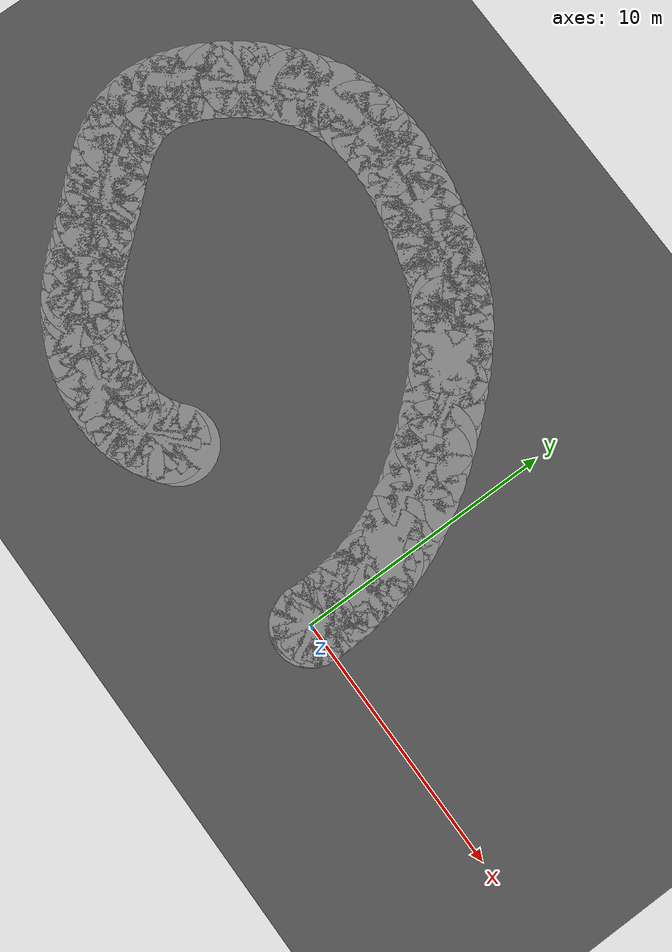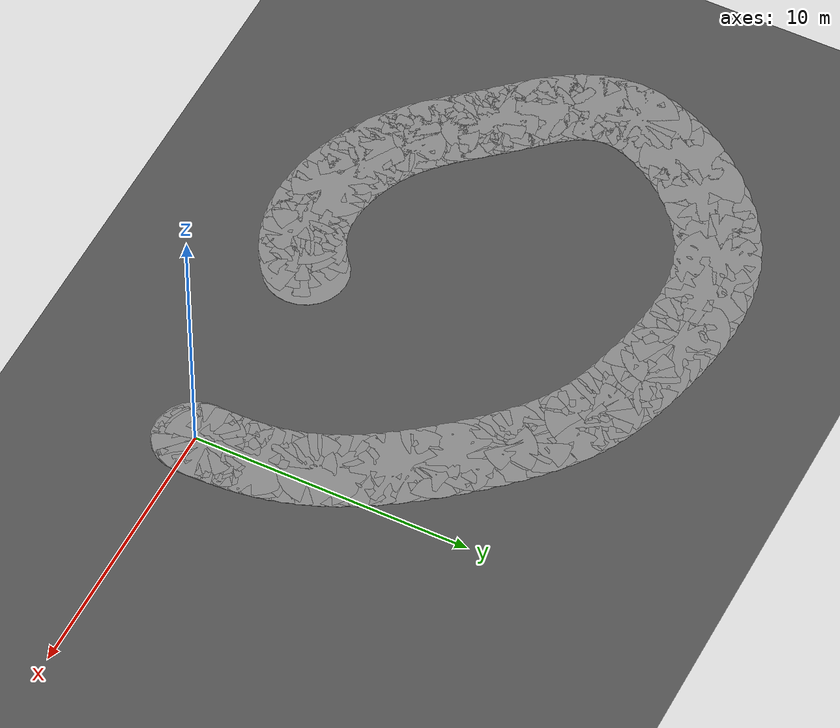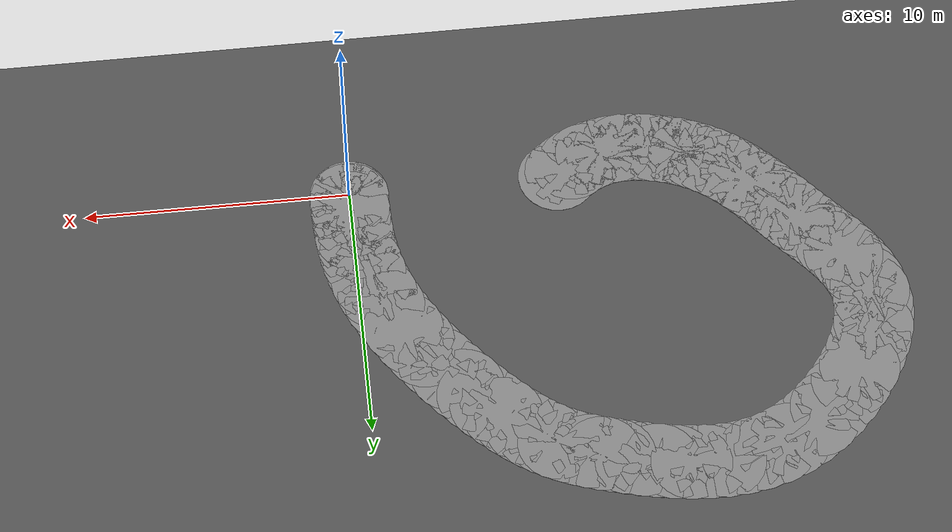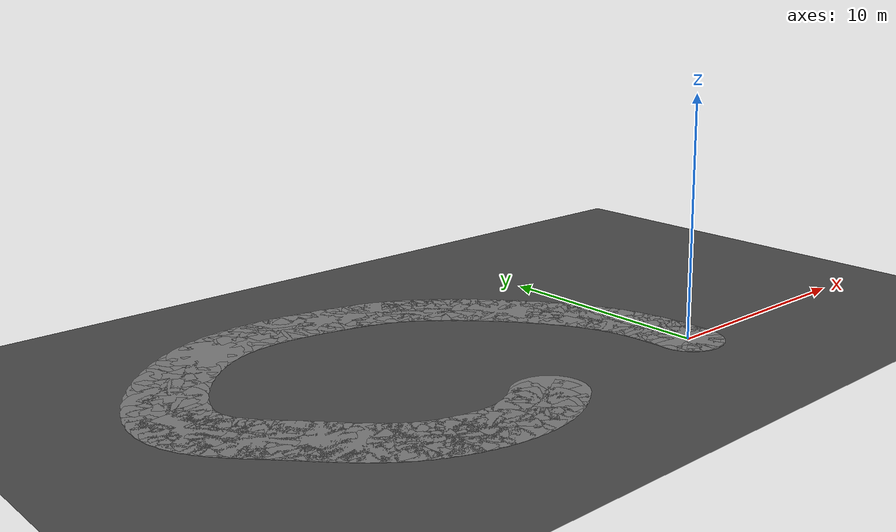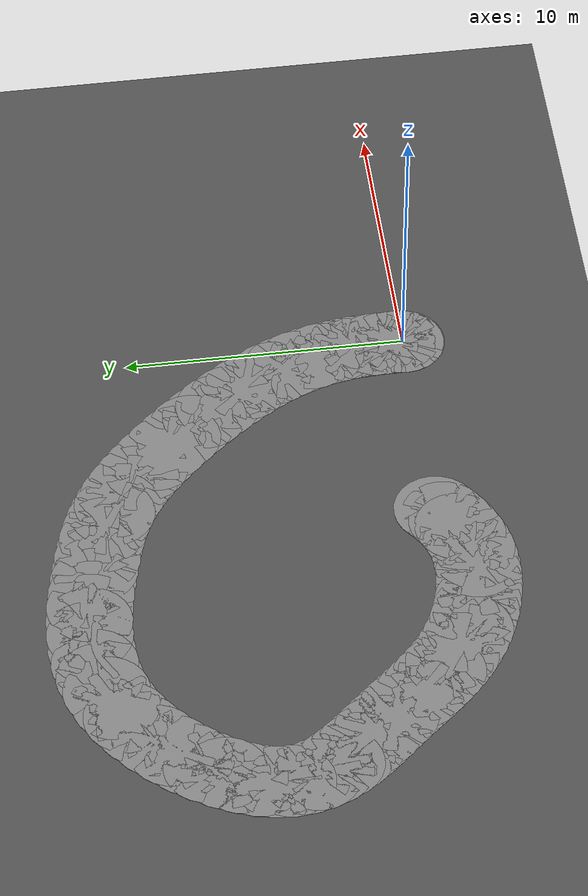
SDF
<sdf version="1.6">
 <world name="mirror_edge_world">
  <model name="ground_plane">
   <static>true</static>
   <link name="link">
    <collision name="collision">
     <geometry><plane><normal>0 0 1</normal><size>100 100</size></plane></geometry>
    </collision>
    <visual name="visual">
     <geometry><plane><normal>0 0 1</normal><size>100 100</size></plane></geometry>
     <material>
      <ambient>0.3 0.3 0.3 1</ambient>
      <diffuse>0.3 0.3 0.3 1</diffuse>
      <specular>0.5 0.5 0.5 1</specular>
      <emissive>0 0 0 1</emissive>
     </material>
    </visual>
   </link>
  </model>
  <model name="corridor_hex_0_0">
   <static>true</static>
   <link name="link">
    <pose>0.0 0.0 0.005 0 0 0</pose>
    <visual name="visual">
     <geometry><cylinder><radius>1.5</radius><length>0.01</length><segments>6</segments></cylinder></geometry>
     <material>
      <ambient>0.5 0.5 0.5 1</ambient>
      <diffuse>0.5 0.5 0.5 1</diffuse>
      <specular>0.3 0.3 0.3 1</specular>
      <emissive>0 0 0 1</emissive>
     </material>
    </visual>
   </link>
  </model>
  <model name="corridor_hex_1_0">
   <static>true</static>
   <link name="link">
    <pose>0.004 0.032 0.005 0 0 0</pose>
    <visual name="visual">
     <geometry><cylinder><radius>1.5</radius><length>0.01</length><segments>6</segments></cylinder></geometry>
     <material>
      <ambient>0.5 0.5 0.5 1</ambient>
      <diffuse>0.5 0.5 0.5 1</diffuse>
      <specular>0.3 0.3 0.3 1</specular>
      <emissive>0 0 0 1</emissive>
     </material>
    </visual>
   </link>
  </model>
  <model name="corridor_hex_2_0">
   <static>true</static>
   <link name="link">
    <pose>0.008 0.069 0.005 0 0 0</pose>
    <visual name="visual">
     <geometry><cylinder><radius>1.5</radius><length>0.01</length><segments>6</segments></cylinder></geometry>
     <material>
      <ambient>0.5 0.5 0.5 1</ambient>
      <diffuse>0.5 0.5 0.5 1</diffuse>
      <specular>0.3 0.3 0.3 1</specular>
      <emissive>0 0 0 1</emissive>
     </material>
    </visual>
   </link>
  </model>
  <model name="corridor_hex_3_0">
   <static>true</static>
   <link name="link">
    <pose>0.011 0.113 0.005 0 0 0</pose>
    <visual name="visual">
     <geometry><cylinder><radius>1.5</radius><length>0.01</length><segments>6</segments></cylinder></geometry>
     <material>
      <ambient>0.5 0.5 0.5 1</ambient>
      <diffuse>0.5 0.5 0.5 1</diffuse>
      <specular>0.3 0.3 0.3 1</specular>
      <emissive>0 0 0 1</emissive>
     </material>
    </visual>
   </link>
  </model>
  <model name="corridor_hex_4_0">
   <static>true</static>
   <link name="link">
    <pose>0.014 0.168 0.005 0 0 0</pose>
    <visual name="visual">
     <geometry><cylinder><radius>1.5</radius><length>0.01</length><segments>6</segments></cylinder></geometry>
     <material>
      <ambient>0.5 0.5 0.5 1</ambient>
      <diffuse>0.5 0.5 0.5 1</diffuse>
      <specular>0.3 0.3 0.3 1</specular>
      <emissive>0 0 0 1</emissive>
     </material>
    </visual>
   </link>
  </model>
  <model name="corridor_hex_5_0">
   <static>true</static>
   <link name="link">
    <pose>0.016 0.239 0.005 0 0 0</pose>
    <visual name="visual">
     <geometry><cylinder><radius>1.5</radius><length>0.01</length><segments>6</segments></cylinder></geometry>
     <material>
      <ambient>0.5 0.5 0.5 1</ambient>
      <diffuse>0.5 0.5 0.5 1</diffuse>
      <specular>0.3 0.3 0.3 1</specular>
      <emissive>0 0 0 1</emissive>
     </material>
    </visual>
   </link>
  </model>
  <model name="corridor_hex_6_0">
   <static>true</static>
   <link name="link">
    <pose>0.016 0.33 0.005 0 0 0</pose>
    <visual name="visual">
     <geometry><cylinder><radius>1.5</radius><length>0.01</length><segments>6</segments></cylinder></geometry>
     <material>
      <ambient>0.5 0.5 0.5 1</ambient>
      <diffuse>0.5 0.5 0.5 1</diffuse>
      <specular>0.3 0.3 0.3 1</specular>
      <emissive>0 0 0 1</emissive>
     </material>
    </visual>
   </link>
  </model>
  <model name="corridor_hex_7_0">
   <static>true</static>
   <link name="link">
    <pose>0.015 0.443 0.005 0 0 0</pose>
    <visual name="visual">
     <geometry><cylinder><radius>1.5</radius><length>0.01</length><segments>6</segments></cylinder></geometry>
     <material>
      <ambient>0.5 0.5 0.5 1</ambient>
      <diffuse>0.5 0.5 0.5 1</diffuse>
      <specular>0.3 0.3 0.3 1</specular>
      <emissive>0 0 0 1</emissive>
     </material>
    </visual>
   </link>
  </model>
  <model name="corridor_hex_8_0">
   <static>true</static>
   <link name="link">
    <pose>0.012 0.584 0.005 0 0 0</pose>
    <visual name="visual">
     <geometry><cylinder><radius>1.5</radius><length>0.01</length><segments>6</segments></cylinder></geometry>
     <material>
      <ambient>0.5 0.5 0.5 1</ambient>
      <diffuse>0.5 0.5 0.5 1</diffuse>
      <specular>0.3 0.3 0.3 1</specular>
      <emissive>0 0 0 1</emissive>
     </material>
    </visual>
   </link>
  </model>
  <model name="corridor_hex_9_0">
   <static>true</static>
   <link name="link">
    <pose>0.008 0.756 0.005 0 0 0</pose>
    <visual name="visual">
     <geometry><cylinder><radius>1.5</radius><length>0.01</length><segments>6</segments></cylinder></geometry>
     <material>
      <ambient>0.5 0.5 0.5 1</ambient>
      <diffuse>0.5 0.5 0.5 1</diffuse>
      <specular>0.3 0.3 0.3 1</specular>
      <emissive>0 0 0 1</emissive>
     </material>
    </visual>
   </link>
  </model>
  <model name="corridor_hex_10_0">
   <static>true</static>
   <link name="link">
    <pose>0.001 0.962 0.005 0 0 0</pose>
    <visual name="visual">
     <geometry><cylinder><radius>1.5</radius><length>0.01</length><segments>6</segments></cylinder></geometry>
     <material>
      <ambient>0.5 0.5 0.5 1</ambient>
      <diffuse>0.5 0.5 0.5 1</diffuse>
      <specular>0.3 0.3 0.3 1</specular>
      <emissive>0 0 0 1</emissive>
     </material>
    </visual>
   </link>
  </model>
  <model name="corridor_hex_11_0">
   <static>true</static>
   <link name="link">
    <pose>-0.008 1.206 0.005 0 0 0</pose>
    <visual name="visual">
     <geometry><cylinder><radius>1.5</radius><length>0.01</length><segments>6</segments></cylinder></geometry>
     <material>
      <ambient>0.5 0.5 0.5 1</ambient>
      <diffuse>0.5 0.5 0.5 1</diffuse>
      <specular>0.3 0.3 0.3 1</specular>
      <emissive>0 0 0 1</emissive>
     </material>
    </visual>
   </link>
  </model>
  <model name="corridor_hex_12_0">
   <static>true</static>
   <link name="link">
    <pose>-0.024 1.488 0.005 0 0 0</pose>
    <visual name="visual">
     <geometry><cylinder><radius>1.5</radius><length>0.01</length><segments>6</segments></cylinder></geometry>
     <material>
      <ambient>0.5 0.5 0.5 1</ambient>
      <diffuse>0.5 0.5 0.5 1</diffuse>
      <specular>0.3 0.3 0.3 1</specular>
      <emissive>0 0 0 1</emissive>
     </material>
    </visual>
   </link>
  </model>
  <model name="corridor_hex_13_0">
   <static>true</static>
   <link name="link">
    <pose>-0.05 1.806 0.005 0 0 0</pose>
    <visual name="visual">
     <geometry><cylinder><radius>1.5</radius><length>0.01</length><segments>6</segments></cylinder></geometry>
     <material>
      <ambient>0.5 0.5 0.5 1</ambient>
      <diffuse>0.5 0.5 0.5 1</diffuse>
      <specular>0.3 0.3 0.3 1</specular>
      <emissive>0 0 0 1</emissive>
     </material>
    </visual>
   </link>
  </model>
  <model name="corridor_hex_14_0">
   <static>true</static>
   <link name="link">
    <pose>-0.092 2.156 0.005 0 0 0</pose>
    <visual name="visual">
     <geometry><cylinder><radius>1.5</radius><length>0.01</length><segments>6</segments></cylinder></geometry>
     <material>
      <ambient>0.5 0.5 0.5 1</ambient>
      <diffuse>0.5 0.5 0.5 1</diffuse>
      <specular>0.3 0.3 0.3 1</specular>
      <emissive>0 0 0 1</emissive>
     </material>
    </visual>
   </link>
  </model>
  <model name="corridor_hex_15_0">
   <static>true</static>
   <link name="link">
    <pose>-0.153 2.537 0.005 0 0 0</pose>
    <visual name="visual">
     <geometry><cylinder><radius>1.5</radius><length>0.01</length><segments>6</segments></cylinder></geometry>
     <material>
      <ambient>0.5 0.5 0.5 1</ambient>
      <diffuse>0.5 0.5 0.5 1</diffuse>
      <specular>0.3 0.3 0.3 1</specular>
      <emissive>0 0 0 1</emissive>
     </material>
    </visual>
   </link>
  </model>
  <model name="corridor_hex_16_0">
   <static>true</static>
   <link name="link">
    <pose>-0.238 2.947 0.005 0 0 0</pose>
    <visual name="visual">
     <geometry><cylinder><radius>1.5</radius><length>0.01</length><segments>6</segments></cylinder></geometry>
     <material>
      <ambient>0.5 0.5 0.5 1</ambient>
      <diffuse>0.5 0.5 0.5 1</diffuse>
      <specular>0.3 0.3 0.3 1</specular>
      <emissive>0 0 0 1</emissive>
     </material>
    </visual>
   </link>
  </model>
  <model name="corridor_hex_17_0">
   <static>true</static>
   <link name="link">
    <pose>-0.353 3.383 0.005 0 0 0</pose>
    <visual name="visual">
     <geometry><cylinder><radius>1.5</radius><length>0.01</length><segments>6</segments></cylinder></geometry>
     <material>
      <ambient>0.5 0.5 0.5 1</ambient>
      <diffuse>0.5 0.5 0.5 1</diffuse>
      <specular>0.3 0.3 0.3 1</specular>
      <emissive>0 0 0 1</emissive>
     </material>
    </visual>
   </link>
  </model>
  <model name="corridor_hex_18_0">
   <static>true</static>
   <link name="link">
    <pose>-0.501 3.844 0.005 0 0 0</pose>
    <visual name="visual">
     <geometry><cylinder><radius>1.5</radius><length>0.01</length><segments>6</segments></cylinder></geometry>
     <material>
      <ambient>0.5 0.5 0.5 1</ambient>
      <diffuse>0.5 0.5 0.5 1</diffuse>
      <specular>0.3 0.3 0.3 1</specular>
      <emissive>0 0 0 1</emissive>
     </material>
    </visual>
   </link>
  </model>
  <model name="corridor_hex_19_0">
   <static>true</static>
   <link name="link">
    <pose>-0.686 4.326 0.005 0 0 0</pose>
    <visual name="visual">
     <geometry><cylinder><radius>1.5</radius><length>0.01</length><segments>6</segments></cylinder></geometry>
     <material>
      <ambient>0.5 0.5 0.5 1</ambient>
      <diffuse>0.5 0.5 0.5 1</diffuse>
      <specular>0.3 0.3 0.3 1</specular>
      <emissive>0 0 0 1</emissive>
     </material>
    </visual>
   </link>
  </model>
  <model name="corridor_hex_20_0">
   <static>true</static>
   <link name="link">
    <pose>-0.914 4.829 0.005 0 0 0</pose>
    <visual name="visual">
     <geometry><cylinder><radius>1.5</radius><length>0.01</length><segments>6</segments></cylinder></geometry>
     <material>
      <ambient>0.5 0.5 0.5 1</ambient>
      <diffuse>0.5 0.5 0.5 1</diffuse>
      <specular>0.3 0.3 0.3 1</specular>
      <emissive>0 0 0 1</emissive>
     </material>
    </visual>
   </link>
  </model>
  <model name="corridor_hex_21_0">
   <static>true</static>
   <link name="link">
    <pose>-1.188 5.348 0.005 0 0 0</pose>
    <visual name="visual">
     <geometry><cylinder><radius>1.5</radius><length>0.01</length><segments>6</segments></cylinder></geometry>
     <material>
      <ambient>0.5 0.5 0.5 1</ambient>
      <diffuse>0.5 0.5 0.5 1</diffuse>
      <specular>0.3 0.3 0.3 1</specular>
      <emissive>0 0 0 1</emissive>
     </material>
    </visual>
   </link>
  </model>
  <model name="corridor_hex_22_0">
   <static>true</static>
   <link name="link">
    <pose>-1.506 5.88 0.005 0 0 0</pose>
    <visual name="visual">
     <geometry><cylinder><radius>1.5</radius><length>0.01</length><segments>6</segments></cylinder></geometry>
     <material>
      <ambient>0.5 0.5 0.5 1</ambient>
      <diffuse>0.5 0.5 0.5 1</diffuse>
      <specular>0.3 0.3 0.3 1</specular>
      <emissive>0 0 0 1</emissive>
     </material>
    </visual>
   </link>
  </model>
  <model name="corridor_hex_23_0">
   <static>true</static>
   <link name="link">
    <pose>-1.861 6.419 0.005 0 0 0</pose>
    <visual name="visual">
     <geometry><cylinder><radius>1.5</radius><length>0.01</length><segments>6</segments></cylinder></geometry>
     <material>
      <ambient>0.5 0.5 0.5 1</ambient>
      <diffuse>0.5 0.5 0.5 1</diffuse>
      <specular>0.3 0.3 0.3 1</specular>
      <emissive>0 0 0 1</emissive>
     </material>
    </visual>
   </link>
  </model>
  <model name="corridor_hex_24_0">
   <static>true</static>
   <link name="link">
    <pose>-2.245 6.957 0.005 0 0 0</pose>
    <visual name="visual">
     <geometry><cylinder><radius>1.5</radius><length>0.01</length><segments>6</segments></cylinder></geometry>
     <material>
      <ambient>0.5 0.5 0.5 1</ambient>
      <diffuse>0.5 0.5 0.5 1</diffuse>
      <specular>0.3 0.3 0.3 1</specular>
      <emissive>0 0 0 1</emissive>
     </material>
    </visual>
   </link>
  </model>
  <model name="corridor_hex_25_0">
   <static>true</static>
   <link name="link">
    <pose>-2.653 7.488 0.005 0 0 0</pose>
    <visual name="visual">
     <geometry><cylinder><radius>1.5</radius><length>0.01</length><segments>6</segments></cylinder></geometry>
     <material>
      <ambient>0.5 0.5 0.5 1</ambient>
      <diffuse>0.5 0.5 0.5 1</diffuse>
      <specular>0.3 0.3 0.3 1</specular>
      <emissive>0 0 0 1</emissive>
     </material>
    </visual>
   </link>
  </model>
  <model name="corridor_hex_26_0">
   <static>true</static>
   <link name="link">
    <pose>-3.077 8.006 0.005 0 0 0</pose>
    <visual name="visual">
     <geometry><cylinder><radius>1.5</radius><length>0.01</length><segments>6</segments></cylinder></geometry>
     <material>
      <ambient>0.5 0.5 0.5 1</ambient>
      <diffuse>0.5 0.5 0.5 1</diffuse>
      <specular>0.3 0.3 0.3 1</specular>
      <emissive>0 0 0 1</emissive>
     </material>
    </visual>
   </link>
  </model>
  <model name="corridor_hex_27_0">
   <static>true</static>
   <link name="link">
    <pose>-3.51 8.504 0.005 0 0 0</pose>
    <visual name="visual">
     <geometry><cylinder><radius>1.5</radius><length>0.01</length><segments>6</segments></cylinder></geometry>
     <material>
      <ambient>0.5 0.5 0.5 1</ambient>
      <diffuse>0.5 0.5 0.5 1</diffuse>
      <specular>0.3 0.3 0.3 1</specular>
      <emissive>0 0 0 1</emissive>
     </material>
    </visual>
   </link>
  </model>
  <model name="corridor_hex_28_0">
   <static>true</static>
   <link name="link">
    <pose>-3.946 8.976 0.005 0 0 0</pose>
    <visual name="visual">
     <geometry><cylinder><radius>1.5</radius><length>0.01</length><segments>6</segments></cylinder></geometry>
     <material>
      <ambient>0.5 0.5 0.5 1</ambient>
      <diffuse>0.5 0.5 0.5 1</diffuse>
      <specular>0.3 0.3 0.3 1</specular>
      <emissive>0 0 0 1</emissive>
     </material>
    </visual>
   </link>
  </model>
  <model name="corridor_hex_29_0">
   <static>true</static>
   <link name="link">
    <pose>-4.377 9.416 0.005 0 0 0</pose>
    <visual name="visual">
     <geometry><cylinder><radius>1.5</radius><length>0.01</length><segments>6</segments></cylinder></geometry>
     <material>
      <ambient>0.5 0.5 0.5 1</ambient>
      <diffuse>0.5 0.5 0.5 1</diffuse>
      <specular>0.3 0.3 0.3 1</specular>
      <emissive>0 0 0 1</emissive>
     </material>
    </visual>
   </link>
  </model>
  <model name="corridor_hex_30_0">
   <static>true</static>
   <link name="link">
    <pose>-4.797 9.816 0.005 0 0 0</pose>
    <visual name="visual">
     <geometry><cylinder><radius>1.5</radius><length>0.01</length><segments>6</segments></cylinder></geometry>
     <material>
      <ambient>0.5 0.5 0.5 1</ambient>
      <diffuse>0.5 0.5 0.5 1</diffuse>
      <specular>0.3 0.3 0.3 1</specular>
      <emissive>0 0 0 1</emissive>
     </material>
    </visual>
   </link>
  </model>
  <model name="corridor_hex_31_0">
   <static>true</static>
   <link name="link">
    <pose>-5.198 10.172 0.005 0 0 0</pose>
    <visual name="visual">
     <geometry><cylinder><radius>1.5</radius><length>0.01</length><segments>6</segments></cylinder></geometry>
     <material>
      <ambient>0.5 0.5 0.5 1</ambient>
      <diffuse>0.5 0.5 0.5 1</diffuse>
      <specular>0.3 0.3 0.3 1</specular>
      <emissive>0 0 0 1</emissive>
     </material>
    </visual>
   </link>
  </model>
  <model name="corridor_hex_32_0">
   <static>true</static>
   <link name="link">
    <pose>-5.581 10.481 0.005 0 0 0</pose>
    <visual name="visual">
     <geometry><cylinder><radius>1.5</radius><length>0.01</length><segments>6</segments></cylinder></geometry>
     <material>
      <ambient>0.5 0.5 0.5 1</ambient>
      <diffuse>0.5 0.5 0.5 1</diffuse>
      <specular>0.3 0.3 0.3 1</specular>
      <emissive>0 0 0 1</emissive>
     </material>
    </visual>
   </link>
  </model>
  <model name="corridor_hex_33_0">
   <static>true</static>
   <link name="link">
    <pose>-5.951 10.75 0.005 0 0 0</pose>
    <visual name="visual">
     <geometry><cylinder><radius>1.5</radius><length>0.01</length><segments>6</segments></cylinder></geometry>
     <material>
      <ambient>0.5 0.5 0.5 1</ambient>
      <diffuse>0.5 0.5 0.5 1</diffuse>
      <specular>0.3 0.3 0.3 1</specular>
      <emissive>0 0 0 1</emissive>
     </material>
    </visual>
   </link>
  </model>
  <model name="corridor_hex_34_0">
   <static>true</static>
   <link name="link">
    <pose>-6.315 10.983 0.005 0 0 0</pose>
    <visual name="visual">
     <geometry><cylinder><radius>1.5</radius><length>0.01</length><segments>6</segments></cylinder></geometry>
     <material>
      <ambient>0.5 0.5 0.5 1</ambient>
      <diffuse>0.5 0.5 0.5 1</diffuse>
      <specular>0.3 0.3 0.3 1</specular>
      <emissive>0 0 0 1</emissive>
     </material>
    </visual>
   </link>
  </model>
  <model name="corridor_hex_35_0">
   <static>true</static>
   <link name="link">
    <pose>-6.677 11.185 0.005 0 0 0</pose>
    <visual name="visual">
     <geometry><cylinder><radius>1.5</radius><length>0.01</length><segments>6</segments></cylinder></geometry>
     <material>
      <ambient>0.5 0.5 0.5 1</ambient>
      <diffuse>0.5 0.5 0.5 1</diffuse>
      <specular>0.3 0.3 0.3 1</specular>
      <emissive>0 0 0 1</emissive>
     </material>
    </visual>
   </link>
  </model>
  <model name="corridor_hex_36_0">
   <static>true</static>
   <link name="link">
    <pose>-7.044 11.361 0.005 0 0 0</pose>
    <visual name="visual">
     <geometry><cylinder><radius>1.5</radius><length>0.01</length><segments>6</segments></cylinder></geometry>
     <material>
      <ambient>0.5 0.5 0.5 1</ambient>
      <diffuse>0.5 0.5 0.5 1</diffuse>
      <specular>0.3 0.3 0.3 1</specular>
      <emissive>0 0 0 1</emissive>
     </material>
    </visual>
   </link>
  </model>
  <model name="corridor_hex_37_0">
   <static>true</static>
   <link name="link">
    <pose>-7.423 11.518 0.005 0 0 0</pose>
    <visual name="visual">
     <geometry><cylinder><radius>1.5</radius><length>0.01</length><segments>6</segments></cylinder></geometry>
     <material>
      <ambient>0.5 0.5 0.5 1</ambient>
      <diffuse>0.5 0.5 0.5 1</diffuse>
      <specular>0.3 0.3 0.3 1</specular>
      <emissive>0 0 0 1</emissive>
     </material>
    </visual>
   </link>
  </model>
  <model name="corridor_hex_38_0">
   <static>true</static>
   <link name="link">
    <pose>-7.818 11.659 0.005 0 0 0</pose>
    <visual name="visual">
     <geometry><cylinder><radius>1.5</radius><length>0.01</length><segments>6</segments></cylinder></geometry>
     <material>
      <ambient>0.5 0.5 0.5 1</ambient>
      <diffuse>0.5 0.5 0.5 1</diffuse>
      <specular>0.3 0.3 0.3 1</specular>
      <emissive>0 0 0 1</emissive>
     </material>
    </visual>
   </link>
  </model>
  <model name="corridor_hex_39_0">
   <static>true</static>
   <link name="link">
    <pose>-8.236 11.79 0.005 0 0 0</pose>
    <visual name="visual">
     <geometry><cylinder><radius>1.5</radius><length>0.01</length><segments>6</segments></cylinder></geometry>
     <material>
      <ambient>0.5 0.5 0.5 1</ambient>
      <diffuse>0.5 0.5 0.5 1</diffuse>
      <specular>0.3 0.3 0.3 1</specular>
      <emissive>0 0 0 1</emissive>
     </material>
    </visual>
   </link>
  </model>
  <model name="corridor_hex_40_0">
   <static>true</static>
   <link name="link">
    <pose>-8.683 11.916 0.005 0 0 0</pose>
    <visual name="visual">
     <geometry><cylinder><radius>1.5</radius><length>0.01</length><segments>6</segments></cylinder></geometry>
     <material>
      <ambient>0.5 0.5 0.5 1</ambient>
      <diffuse>0.5 0.5 0.5 1</diffuse>
      <specular>0.3 0.3 0.3 1</specular>
      <emissive>0 0 0 1</emissive>
     </material>
    </visual>
   </link>
  </model>
  <model name="corridor_hex_41_0">
   <static>true</static>
   <link name="link">
    <pose>-9.165 12.042 0.005 0 0 0</pose>
    <visual name="visual">
     <geometry><cylinder><radius>1.5</radius><length>0.01</length><segments>6</segments></cylinder></geometry>
     <material>
      <ambient>0.5 0.5 0.5 1</ambient>
      <diffuse>0.5 0.5 0.5 1</diffuse>
      <specular>0.3 0.3 0.3 1</specular>
      <emissive>0 0 0 1</emissive>
     </material>
    </visual>
   </link>
  </model>
  <model name="corridor_hex_42_0">
   <static>true</static>
   <link name="link">
    <pose>-9.683 12.169 0.005 0 0 0</pose>
    <visual name="visual">
     <geometry><cylinder><radius>1.5</radius><length>0.01</length><segments>6</segments></cylinder></geometry>
     <material>
      <ambient>0.5 0.5 0.5 1</ambient>
      <diffuse>0.5 0.5 0.5 1</diffuse>
      <specular>0.3 0.3 0.3 1</specular>
      <emissive>0 0 0 1</emissive>
     </material>
    </visual>
   </link>
  </model>
  <model name="corridor_hex_43_0">
   <static>true</static>
   <link name="link">
    <pose>-10.232 12.288 0.005 0 0 0</pose>
    <visual name="visual">
     <geometry><cylinder><radius>1.5</radius><length>0.01</length><segments>6</segments></cylinder></geometry>
     <material>
      <ambient>0.5 0.5 0.5 1</ambient>
      <diffuse>0.5 0.5 0.5 1</diffuse>
      <specular>0.3 0.3 0.3 1</specular>
      <emissive>0 0 0 1</emissive>
     </material>
    </visual>
   </link>
  </model>
  <model name="corridor_hex_44_0">
   <static>true</static>
   <link name="link">
    <pose>-10.808 12.391 0.005 0 0 0</pose>
    <visual name="visual">
     <geometry><cylinder><radius>1.5</radius><length>0.01</length><segments>6</segments></cylinder></geometry>
     <material>
      <ambient>0.5 0.5 0.5 1</ambient>
      <diffuse>0.5 0.5 0.5 1</diffuse>
      <specular>0.3 0.3 0.3 1</specular>
      <emissive>0 0 0 1</emissive>
     </material>
    </visual>
   </link>
  </model>
  <model name="corridor_hex_45_0">
   <static>true</static>
   <link name="link">
    <pose>-11.404 12.469 0.005 0 0 0</pose>
    <visual name="visual">
     <geometry><cylinder><radius>1.5</radius><length>0.01</length><segments>6</segments></cylinder></geometry>
     <material>
      <ambient>0.5 0.5 0.5 1</ambient>
      <diffuse>0.5 0.5 0.5 1</diffuse>
      <specular>0.3 0.3 0.3 1</specular>
      <emissive>0 0 0 1</emissive>
     </material>
    </visual>
   </link>
  </model>
  <model name="corridor_hex_46_0">
   <static>true</static>
   <link name="link">
    <pose>-12.015 12.515 0.005 0 0 0</pose>
    <visual name="visual">
     <geometry><cylinder><radius>1.5</radius><length>0.01</length><segments>6</segments></cylinder></geometry>
     <material>
      <ambient>0.5 0.5 0.5 1</ambient>
      <diffuse>0.5 0.5 0.5 1</diffuse>
      <specular>0.3 0.3 0.3 1</specular>
      <emissive>0 0 0 1</emissive>
     </material>
    </visual>
   </link>
  </model>
  <model name="corridor_hex_47_0">
   <static>true</static>
   <link name="link">
    <pose>-12.635 12.519 0.005 0 0 0</pose>
    <visual name="visual">
     <geometry><cylinder><radius>1.5</radius><length>0.01</length><segments>6</segments></cylinder></geometry>
     <material>
      <ambient>0.5 0.5 0.5 1</ambient>
      <diffuse>0.5 0.5 0.5 1</diffuse>
      <specular>0.3 0.3 0.3 1</specular>
      <emissive>0 0 0 1</emissive>
     </material>
    </visual>
   </link>
  </model>
  <model name="corridor_hex_48_0">
   <static>true</static>
   <link name="link">
    <pose>-13.259 12.474 0.005 0 0 0</pose>
    <visual name="visual">
     <geometry><cylinder><radius>1.5</radius><length>0.01</length><segments>6</segments></cylinder></geometry>
     <material>
      <ambient>0.5 0.5 0.5 1</ambient>
      <diffuse>0.5 0.5 0.5 1</diffuse>
      <specular>0.3 0.3 0.3 1</specular>
      <emissive>0 0 0 1</emissive>
     </material>
    </visual>
   </link>
  </model>
  <model name="corridor_hex_49_0">
   <static>true</static>
   <link name="link">
    <pose>-13.881 12.37 0.005 0 0 0</pose>
    <visual name="visual">
     <geometry><cylinder><radius>1.5</radius><length>0.01</length><segments>6</segments></cylinder></geometry>
     <material>
      <ambient>0.5 0.5 0.5 1</ambient>
      <diffuse>0.5 0.5 0.5 1</diffuse>
      <specular>0.3 0.3 0.3 1</specular>
      <emissive>0 0 0 1</emissive>
     </material>
    </visual>
   </link>
  </model>
  <model name="corridor_hex_50_0">
   <static>true</static>
   <link name="link">
    <pose>-14.497 12.199 0.005 0 0 0</pose>
    <visual name="visual">
     <geometry><cylinder><radius>1.5</radius><length>0.01</length><segments>6</segments></cylinder></geometry>
     <material>
      <ambient>0.5 0.5 0.5 1</ambient>
      <diffuse>0.5 0.5 0.5 1</diffuse>
      <specular>0.3 0.3 0.3 1</specular>
      <emissive>0 0 0 1</emissive>
     </material>
    </visual>
   </link>
  </model>
  <model name="corridor_hex_51_0">
   <static>true</static>
   <link name="link">
    <pose>-15.099 11.953 0.005 0 0 0</pose>
    <visual name="visual">
     <geometry><cylinder><radius>1.5</radius><length>0.01</length><segments>6</segments></cylinder></geometry>
     <material>
      <ambient>0.5 0.5 0.5 1</ambient>
      <diffuse>0.5 0.5 0.5 1</diffuse>
      <specular>0.3 0.3 0.3 1</specular>
      <emissive>0 0 0 1</emissive>
     </material>
    </visual>
   </link>
  </model>
  <model name="corridor_hex_52_0">
   <static>true</static>
   <link name="link">
    <pose>-15.683 11.629 0.005 0 0 0</pose>
    <visual name="visual">
     <geometry><cylinder><radius>1.5</radius><length>0.01</length><segments>6</segments></cylinder></geometry>
     <material>
      <ambient>0.5 0.5 0.5 1</ambient>
      <diffuse>0.5 0.5 0.5 1</diffuse>
      <specular>0.3 0.3 0.3 1</specular>
      <emissive>0 0 0 1</emissive>
     </material>
    </visual>
   </link>
  </model>
  <model name="corridor_hex_53_0">
   <static>true</static>
   <link name="link">
    <pose>-16.243 11.237 0.005 0 0 0</pose>
    <visual name="visual">
     <geometry><cylinder><radius>1.5</radius><length>0.01</length><segments>6</segments></cylinder></geometry>
     <material>
      <ambient>0.5 0.5 0.5 1</ambient>
      <diffuse>0.5 0.5 0.5 1</diffuse>
      <specular>0.3 0.3 0.3 1</specular>
      <emissive>0 0 0 1</emissive>
     </material>
    </visual>
   </link>
  </model>
  <model name="corridor_hex_54_0">
   <static>true</static>
   <link name="link">
    <pose>-16.77 10.786 0.005 0 0 0</pose>
    <visual name="visual">
     <geometry><cylinder><radius>1.5</radius><length>0.01</length><segments>6</segments></cylinder></geometry>
     <material>
      <ambient>0.5 0.5 0.5 1</ambient>
      <diffuse>0.5 0.5 0.5 1</diffuse>
      <specular>0.3 0.3 0.3 1</specular>
      <emissive>0 0 0 1</emissive>
     </material>
    </visual>
   </link>
  </model>
  <model name="corridor_hex_55_0">
   <static>true</static>
   <link name="link">
    <pose>-17.258 10.291 0.005 0 0 0</pose>
    <visual name="visual">
     <geometry><cylinder><radius>1.5</radius><length>0.01</length><segments>6</segments></cylinder></geometry>
     <material>
      <ambient>0.5 0.5 0.5 1</ambient>
      <diffuse>0.5 0.5 0.5 1</diffuse>
      <specular>0.3 0.3 0.3 1</specular>
      <emissive>0 0 0 1</emissive>
     </material>
    </visual>
   </link>
  </model>
  <model name="corridor_hex_56_0">
   <static>true</static>
   <link name="link">
    <pose>-17.701 9.761 0.005 0 0 0</pose>
    <visual name="visual">
     <geometry><cylinder><radius>1.5</radius><length>0.01</length><segments>6</segments></cylinder></geometry>
     <material>
      <ambient>0.5 0.5 0.5 1</ambient>
      <diffuse>0.5 0.5 0.5 1</diffuse>
      <specular>0.3 0.3 0.3 1</specular>
      <emissive>0 0 0 1</emissive>
     </material>
    </visual>
   </link>
  </model>
  <model name="corridor_hex_57_0">
   <static>true</static>
   <link name="link">
    <pose>-18.092 9.208 0.005 0 0 0</pose>
    <visual name="visual">
     <geometry><cylinder><radius>1.5</radius><length>0.01</length><segments>6</segments></cylinder></geometry>
     <material>
      <ambient>0.5 0.5 0.5 1</ambient>
      <diffuse>0.5 0.5 0.5 1</diffuse>
      <specular>0.3 0.3 0.3 1</specular>
      <emissive>0 0 0 1</emissive>
     </material>
    </visual>
   </link>
  </model>
  <model name="corridor_hex_58_0">
   <static>true</static>
   <link name="link">
    <pose>-18.424 8.644 0.005 0 0 0</pose>
    <visual name="visual">
     <geometry><cylinder><radius>1.5</radius><length>0.01</length><segments>6</segments></cylinder></geometry>
     <material>
      <ambient>0.5 0.5 0.5 1</ambient>
      <diffuse>0.5 0.5 0.5 1</diffuse>
      <specular>0.3 0.3 0.3 1</specular>
      <emissive>0 0 0 1</emissive>
     </material>
    </visual>
   </link>
  </model>
  <model name="corridor_hex_59_0">
   <static>true</static>
   <link name="link">
    <pose>-18.691 8.08 0.005 0 0 0</pose>
    <visual name="visual">
     <geometry><cylinder><radius>1.5</radius><length>0.01</length><segments>6</segments></cylinder></geometry>
     <material>
      <ambient>0.5 0.5 0.5 1</ambient>
      <diffuse>0.5 0.5 0.5 1</diffuse>
      <specular>0.3 0.3 0.3 1</specular>
      <emissive>0 0 0 1</emissive>
     </material>
    </visual>
   </link>
  </model>
  <model name="corridor_hex_60_0">
   <static>true</static>
   <link name="link">
    <pose>-18.885 7.528 0.005 0 0 0</pose>
    <visual name="visual">
     <geometry><cylinder><radius>1.5</radius><length>0.01</length><segments>6</segments></cylinder></geometry>
     <material>
      <ambient>0.5 0.5 0.5 1</ambient>
      <diffuse>0.5 0.5 0.5 1</diffuse>
      <specular>0.3 0.3 0.3 1</specular>
      <emissive>0 0 0 1</emissive>
     </material>
    </visual>
   </link>
  </model>
  <model name="corridor_hex_61_0">
   <static>true</static>
   <link name="link">
    <pose>-19.0 7.0 0.005 0 0 0</pose>
    <visual name="visual">
     <geometry><cylinder><radius>1.5</radius><length>0.01</length><segments>6</segments></cylinder></geometry>
     <material>
      <ambient>0.5 0.5 0.5 1</ambient>
      <diffuse>0.5 0.5 0.5 1</diffuse>
      <specular>0.3 0.3 0.3 1</specular>
      <emissive>0 0 0 1</emissive>
     </material>
    </visual>
   </link>
  </model>
  <model name="corridor_hex_62_0">
   <static>true</static>
   <link name="link">
    <pose>-19.032 6.504 0.005 0 0 0</pose>
    <visual name="visual">
     <geometry><cylinder><radius>1.5</radius><length>0.01</length><segments>6</segments></cylinder></geometry>
     <material>
      <ambient>0.5 0.5 0.5 1</ambient>
      <diffuse>0.5 0.5 0.5 1</diffuse>
      <specular>0.3 0.3 0.3 1</specular>
      <emissive>0 0 0 1</emissive>
     </material>
    </visual>
   </link>
  </model>
  <model name="corridor_hex_63_0">
   <static>true</static>
   <link name="link">
    <pose>-18.987 6.04 0.005 0 0 0</pose>
    <visual name="visual">
     <geometry><cylinder><radius>1.5</radius><length>0.01</length><segments>6</segments></cylinder></geometry>
     <material>
      <ambient>0.5 0.5 0.5 1</ambient>
      <diffuse>0.5 0.5 0.5 1</diffuse>
      <specular>0.3 0.3 0.3 1</specular>
      <emissive>0 0 0 1</emissive>
     </material>
    </visual>
   </link>
  </model>
  <model name="corridor_hex_64_0">
   <static>true</static>
   <link name="link">
    <pose>-18.876 5.603 0.005 0 0 0</pose>
    <visual name="visual">
     <geometry><cylinder><radius>1.5</radius><length>0.01</length><segments>6</segments></cylinder></geometry>
     <material>
      <ambient>0.5 0.5 0.5 1</ambient>
      <diffuse>0.5 0.5 0.5 1</diffuse>
      <specular>0.3 0.3 0.3 1</specular>
      <emissive>0 0 0 1</emissive>
     </material>
    </visual>
   </link>
  </model>
  <model name="corridor_hex_65_0">
   <static>true</static>
   <link name="link">
    <pose>-18.709 5.192 0.005 0 0 0</pose>
    <visual name="visual">
     <geometry><cylinder><radius>1.5</radius><length>0.01</length><segments>6</segments></cylinder></geometry>
     <material>
      <ambient>0.5 0.5 0.5 1</ambient>
      <diffuse>0.5 0.5 0.5 1</diffuse>
      <specular>0.3 0.3 0.3 1</specular>
      <emissive>0 0 0 1</emissive>
     </material>
    </visual>
   </link>
  </model>
  <model name="corridor_hex_66_0">
   <static>true</static>
   <link name="link">
    <pose>-18.494 4.802 0.005 0 0 0</pose>
    <visual name="visual">
     <geometry><cylinder><radius>1.5</radius><length>0.01</length><segments>6</segments></cylinder></geometry>
     <material>
      <ambient>0.5 0.5 0.5 1</ambient>
      <diffuse>0.5 0.5 0.5 1</diffuse>
      <specular>0.3 0.3 0.3 1</specular>
      <emissive>0 0 0 1</emissive>
     </material>
    </visual>
   </link>
  </model>
  <model name="corridor_hex_67_0">
   <static>true</static>
   <link name="link">
    <pose>-18.241 4.43 0.005 0 0 0</pose>
    <visual name="visual">
     <geometry><cylinder><radius>1.5</radius><length>0.01</length><segments>6</segments></cylinder></geometry>
     <material>
      <ambient>0.5 0.5 0.5 1</ambient>
      <diffuse>0.5 0.5 0.5 1</diffuse>
      <specular>0.3 0.3 0.3 1</specular>
      <emissive>0 0 0 1</emissive>
     </material>
    </visual>
   </link>
  </model>
  <model name="corridor_hex_68_0">
   <static>true</static>
   <link name="link">
    <pose>-17.961 4.072 0.005 0 0 0</pose>
    <visual name="visual">
     <geometry><cylinder><radius>1.5</radius><length>0.01</length><segments>6</segments></cylinder></geometry>
     <material>
      <ambient>0.5 0.5 0.5 1</ambient>
      <diffuse>0.5 0.5 0.5 1</diffuse>
      <specular>0.3 0.3 0.3 1</specular>
      <emissive>0 0 0 1</emissive>
     </material>
    </visual>
   </link>
  </model>
  <model name="corridor_hex_69_0">
   <static>true</static>
   <link name="link">
    <pose>-17.662 3.726 0.005 0 0 0</pose>
    <visual name="visual">
     <geometry><cylinder><radius>1.5</radius><length>0.01</length><segments>6</segments></cylinder></geometry>
     <material>
      <ambient>0.5 0.5 0.5 1</ambient>
      <diffuse>0.5 0.5 0.5 1</diffuse>
      <specular>0.3 0.3 0.3 1</specular>
      <emissive>0 0 0 1</emissive>
     </material>
    </visual>
   </link>
  </model>
  <model name="corridor_hex_70_0">
   <static>true</static>
   <link name="link">
    <pose>-17.356 3.389 0.005 0 0 0</pose>
    <visual name="visual">
     <geometry><cylinder><radius>1.5</radius><length>0.01</length><segments>6</segments></cylinder></geometry>
     <material>
      <ambient>0.5 0.5 0.5 1</ambient>
      <diffuse>0.5 0.5 0.5 1</diffuse>
      <specular>0.3 0.3 0.3 1</specular>
      <emissive>0 0 0 1</emissive>
     </material>
    </visual>
   </link>
  </model>
  <model name="corridor_hex_71_0">
   <static>true</static>
   <link name="link">
    <pose>-17.05 3.055 0.005 0 0 0</pose>
    <visual name="visual">
     <geometry><cylinder><radius>1.5</radius><length>0.01</length><segments>6</segments></cylinder></geometry>
     <material>
      <ambient>0.5 0.5 0.5 1</ambient>
      <diffuse>0.5 0.5 0.5 1</diffuse>
      <specular>0.3 0.3 0.3 1</specular>
      <emissive>0 0 0 1</emissive>
     </material>
    </visual>
   </link>
  </model>
  <model name="corridor_hex_72_0">
   <static>true</static>
   <link name="link">
    <pose>-16.754 2.724 0.005 0 0 0</pose>
    <visual name="visual">
     <geometry><cylinder><radius>1.5</radius><length>0.01</length><segments>6</segments></cylinder></geometry>
     <material>
      <ambient>0.5 0.5 0.5 1</ambient>
      <diffuse>0.5 0.5 0.5 1</diffuse>
      <specular>0.3 0.3 0.3 1</specular>
      <emissive>0 0 0 1</emissive>
     </material>
    </visual>
   </link>
  </model>
  <model name="corridor_hex_73_0">
   <static>true</static>
   <link name="link">
    <pose>-16.468 2.395 0.005 0 0 0</pose>
    <visual name="visual">
     <geometry><cylinder><radius>1.5</radius><length>0.01</length><segments>6</segments></cylinder></geometry>
     <material>
      <ambient>0.5 0.5 0.5 1</ambient>
      <diffuse>0.5 0.5 0.5 1</diffuse>
      <specular>0.3 0.3 0.3 1</specular>
      <emissive>0 0 0 1</emissive>
     </material>
    </visual>
   </link>
  </model>
  <model name="corridor_hex_74_0">
   <static>true</static>
   <link name="link">
    <pose>-16.188 2.07 0.005 0 0 0</pose>
    <visual name="visual">
     <geometry><cylinder><radius>1.5</radius><length>0.01</length><segments>6</segments></cylinder></geometry>
     <material>
      <ambient>0.5 0.5 0.5 1</ambient>
      <diffuse>0.5 0.5 0.5 1</diffuse>
      <specular>0.3 0.3 0.3 1</specular>
      <emissive>0 0 0 1</emissive>
     </material>
    </visual>
   </link>
  </model>
  <model name="corridor_hex_75_0">
   <static>true</static>
   <link name="link">
    <pose>-15.911 1.751 0.005 0 0 0</pose>
    <visual name="visual">
     <geometry><cylinder><radius>1.5</radius><length>0.01</length><segments>6</segments></cylinder></geometry>
     <material>
      <ambient>0.5 0.5 0.5 1</ambient>
      <diffuse>0.5 0.5 0.5 1</diffuse>
      <specular>0.3 0.3 0.3 1</specular>
      <emissive>0 0 0 1</emissive>
     </material>
    </visual>
   </link>
  </model>
  <model name="corridor_hex_76_0">
   <static>true</static>
   <link name="link">
    <pose>-15.633 1.441 0.005 0 0 0</pose>
    <visual name="visual">
     <geometry><cylinder><radius>1.5</radius><length>0.01</length><segments>6</segments></cylinder></geometry>
     <material>
      <ambient>0.5 0.5 0.5 1</ambient>
      <diffuse>0.5 0.5 0.5 1</diffuse>
      <specular>0.3 0.3 0.3 1</specular>
      <emissive>0 0 0 1</emissive>
     </material>
    </visual>
   </link>
  </model>
  <model name="corridor_hex_77_0">
   <static>true</static>
   <link name="link">
    <pose>-15.351 1.14 0.005 0 0 0</pose>
    <visual name="visual">
     <geometry><cylinder><radius>1.5</radius><length>0.01</length><segments>6</segments></cylinder></geometry>
     <material>
      <ambient>0.5 0.5 0.5 1</ambient>
      <diffuse>0.5 0.5 0.5 1</diffuse>
      <specular>0.3 0.3 0.3 1</specular>
      <emissive>0 0 0 1</emissive>
     </material>
    </visual>
   </link>
  </model>
  <model name="corridor_hex_78_0">
   <static>true</static>
   <link name="link">
    <pose>-15.062 0.851 0.005 0 0 0</pose>
    <visual name="visual">
     <geometry><cylinder><radius>1.5</radius><length>0.01</length><segments>6</segments></cylinder></geometry>
     <material>
      <ambient>0.5 0.5 0.5 1</ambient>
      <diffuse>0.5 0.5 0.5 1</diffuse>
      <specular>0.3 0.3 0.3 1</specular>
      <emissive>0 0 0 1</emissive>
     </material>
    </visual>
   </link>
  </model>
  <model name="corridor_hex_79_0">
   <static>true</static>
   <link name="link">
    <pose>-14.762 0.576 0.005 0 0 0</pose>
    <visual name="visual">
     <geometry><cylinder><radius>1.5</radius><length>0.01</length><segments>6</segments></cylinder></geometry>
     <material>
      <ambient>0.5 0.5 0.5 1</ambient>
      <diffuse>0.5 0.5 0.5 1</diffuse>
      <specular>0.3 0.3 0.3 1</specular>
      <emissive>0 0 0 1</emissive>
     </material>
    </visual>
   </link>
  </model>
  <model name="corridor_hex_80_0">
   <static>true</static>
   <link name="link">
    <pose>-14.448 0.317 0.005 0 0 0</pose>
    <visual name="visual">
     <geometry><cylinder><radius>1.5</radius><length>0.01</length><segments>6</segments></cylinder></geometry>
     <material>
      <ambient>0.5 0.5 0.5 1</ambient>
      <diffuse>0.5 0.5 0.5 1</diffuse>
      <specular>0.3 0.3 0.3 1</specular>
      <emissive>0 0 0 1</emissive>
     </material>
    </visual>
   </link>
  </model>
  <model name="corridor_hex_81_0">
   <static>true</static>
   <link name="link">
    <pose>-14.115 0.076 0.005 0 0 0</pose>
    <visual name="visual">
     <geometry><cylinder><radius>1.5</radius><length>0.01</length><segments>6</segments></cylinder></geometry>
     <material>
      <ambient>0.5 0.5 0.5 1</ambient>
      <diffuse>0.5 0.5 0.5 1</diffuse>
      <specular>0.3 0.3 0.3 1</specular>
      <emissive>0 0 0 1</emissive>
     </material>
    </visual>
   </link>
  </model>
  <model name="corridor_hex_82_0">
   <static>true</static>
   <link name="link">
    <pose>-13.762 -0.146 0.005 0 0 0</pose>
    <visual name="visual">
     <geometry><cylinder><radius>1.5</radius><length>0.01</length><segments>6</segments></cylinder></geometry>
     <material>
      <ambient>0.5 0.5 0.5 1</ambient>
      <diffuse>0.5 0.5 0.5 1</diffuse>
      <specular>0.3 0.3 0.3 1</specular>
      <emissive>0 0 0 1</emissive>
     </material>
    </visual>
   </link>
  </model>
  <model name="corridor_hex_83_0">
   <static>true</static>
   <link name="link">
    <pose>-13.389 -0.346 0.005 0 0 0</pose>
    <visual name="visual">
     <geometry><cylinder><radius>1.5</radius><length>0.01</length><segments>6</segments></cylinder></geometry>
     <material>
      <ambient>0.5 0.5 0.5 1</ambient>
      <diffuse>0.5 0.5 0.5 1</diffuse>
      <specular>0.3 0.3 0.3 1</specular>
      <emissive>0 0 0 1</emissive>
     </material>
    </visual>
   </link>
  </model>
  <model name="corridor_hex_84_0">
   <static>true</static>
   <link name="link">
    <pose>-13.001 -0.524 0.005 0 0 0</pose>
    <visual name="visual">
     <geometry><cylinder><radius>1.5</radius><length>0.01</length><segments>6</segments></cylinder></geometry>
     <material>
      <ambient>0.5 0.5 0.5 1</ambient>
      <diffuse>0.5 0.5 0.5 1</diffuse>
      <specular>0.3 0.3 0.3 1</specular>
      <emissive>0 0 0 1</emissive>
     </material>
    </visual>
   </link>
  </model>
  <model name="corridor_hex_85_0">
   <static>true</static>
   <link name="link">
    <pose>-12.601 -0.678 0.005 0 0 0</pose>
    <visual name="visual">
     <geometry><cylinder><radius>1.5</radius><length>0.01</length><segments>6</segments></cylinder></geometry>
     <material>
      <ambient>0.5 0.5 0.5 1</ambient>
      <diffuse>0.5 0.5 0.5 1</diffuse>
      <specular>0.3 0.3 0.3 1</specular>
      <emissive>0 0 0 1</emissive>
     </material>
    </visual>
   </link>
  </model>
  <model name="corridor_hex_86_0">
   <static>true</static>
   <link name="link">
    <pose>-12.194 -0.807 0.005 0 0 0</pose>
    <visual name="visual">
     <geometry><cylinder><radius>1.5</radius><length>0.01</length><segments>6</segments></cylinder></geometry>
     <material>
      <ambient>0.5 0.5 0.5 1</ambient>
      <diffuse>0.5 0.5 0.5 1</diffuse>
      <specular>0.3 0.3 0.3 1</specular>
      <emissive>0 0 0 1</emissive>
     </material>
    </visual>
   </link>
  </model>
  <model name="corridor_hex_87_0">
   <static>true</static>
   <link name="link">
    <pose>-11.783 -0.909 0.005 0 0 0</pose>
    <visual name="visual">
     <geometry><cylinder><radius>1.5</radius><length>0.01</length><segments>6</segments></cylinder></geometry>
     <material>
      <ambient>0.5 0.5 0.5 1</ambient>
      <diffuse>0.5 0.5 0.5 1</diffuse>
      <specular>0.3 0.3 0.3 1</specular>
      <emissive>0 0 0 1</emissive>
     </material>
    </visual>
   </link>
  </model>
  <model name="corridor_hex_88_0">
   <static>true</static>
   <link name="link">
    <pose>-11.373 -0.982 0.005 0 0 0</pose>
    <visual name="visual">
     <geometry><cylinder><radius>1.5</radius><length>0.01</length><segments>6</segments></cylinder></geometry>
     <material>
      <ambient>0.5 0.5 0.5 1</ambient>
      <diffuse>0.5 0.5 0.5 1</diffuse>
      <specular>0.3 0.3 0.3 1</specular>
      <emissive>0 0 0 1</emissive>
     </material>
    </visual>
   </link>
  </model>
  <model name="corridor_hex_89_0">
   <static>true</static>
   <link name="link">
    <pose>-10.967 -1.027 0.005 0 0 0</pose>
    <visual name="visual">
     <geometry><cylinder><radius>1.5</radius><length>0.01</length><segments>6</segments></cylinder></geometry>
     <material>
      <ambient>0.5 0.5 0.5 1</ambient>
      <diffuse>0.5 0.5 0.5 1</diffuse>
      <specular>0.3 0.3 0.3 1</specular>
      <emissive>0 0 0 1</emissive>
     </material>
    </visual>
   </link>
  </model>
  <model name="corridor_hex_90_0">
   <static>true</static>
   <link name="link">
    <pose>-10.57 -1.04 0.005 0 0 0</pose>
    <visual name="visual">
     <geometry><cylinder><radius>1.5</radius><length>0.01</length><segments>6</segments></cylinder></geometry>
     <material>
      <ambient>0.5 0.5 0.5 1</ambient>
      <diffuse>0.5 0.5 0.5 1</diffuse>
      <specular>0.3 0.3 0.3 1</specular>
      <emissive>0 0 0 1</emissive>
     </material>
    </visual>
   </link>
  </model>
  <model name="corridor_hex_91_0">
   <static>true</static>
   <link name="link">
    <pose>-10.186 -1.022 0.005 0 0 0</pose>
    <visual name="visual">
     <geometry><cylinder><radius>1.5</radius><length>0.01</length><segments>6</segments></cylinder></geometry>
     <material>
      <ambient>0.5 0.5 0.5 1</ambient>
      <diffuse>0.5 0.5 0.5 1</diffuse>
      <specular>0.3 0.3 0.3 1</specular>
      <emissive>0 0 0 1</emissive>
     </material>
    </visual>
   </link>
  </model>
  <model name="corridor_hex_92_0">
   <static>true</static>
   <link name="link">
    <pose>-9.819 -0.97 0.005 0 0 0</pose>
    <visual name="visual">
     <geometry><cylinder><radius>1.5</radius><length>0.01</length><segments>6</segments></cylinder></geometry>
     <material>
      <ambient>0.5 0.5 0.5 1</ambient>
      <diffuse>0.5 0.5 0.5 1</diffuse>
      <specular>0.3 0.3 0.3 1</specular>
      <emissive>0 0 0 1</emissive>
     </material>
    </visual>
   </link>
  </model>
  <model name="corridor_hex_93_0">
   <static>true</static>
   <link name="link">
    <pose>-9.469 -0.884 0.005 0 0 0</pose>
    <visual name="visual">
     <geometry><cylinder><radius>1.5</radius><length>0.01</length><segments>6</segments></cylinder></geometry>
     <material>
      <ambient>0.5 0.5 0.5 1</ambient>
      <diffuse>0.5 0.5 0.5 1</diffuse>
      <specular>0.3 0.3 0.3 1</specular>
      <emissive>0 0 0 1</emissive>
     </material>
    </visual>
   </link>
  </model>
  <model name="corridor_hex_94_0">
   <static>true</static>
   <link name="link">
    <pose>-9.136 -0.767 0.005 0 0 0</pose>
    <visual name="visual">
     <geometry><cylinder><radius>1.5</radius><length>0.01</length><segments>6</segments></cylinder></geometry>
     <material>
      <ambient>0.5 0.5 0.5 1</ambient>
      <diffuse>0.5 0.5 0.5 1</diffuse>
      <specular>0.3 0.3 0.3 1</specular>
      <emissive>0 0 0 1</emissive>
     </material>
    </visual>
   </link>
  </model>
  <model name="corridor_hex_95_0">
   <static>true</static>
   <link name="link">
    <pose>-8.819 -0.62 0.005 0 0 0</pose>
    <visual name="visual">
     <geometry><cylinder><radius>1.5</radius><length>0.01</length><segments>6</segments></cylinder></geometry>
     <material>
      <ambient>0.5 0.5 0.5 1</ambient>
      <diffuse>0.5 0.5 0.5 1</diffuse>
      <specular>0.3 0.3 0.3 1</specular>
      <emissive>0 0 0 1</emissive>
     </material>
    </visual>
   </link>
  </model>
  <model name="corridor_hex_96_0">
   <static>true</static>
   <link name="link">
    <pose>-8.516 -0.445 0.005 0 0 0</pose>
    <visual name="visual">
     <geometry><cylinder><radius>1.5</radius><length>0.01</length><segments>6</segments></cylinder></geometry>
     <material>
      <ambient>0.5 0.5 0.5 1</ambient>
      <diffuse>0.5 0.5 0.5 1</diffuse>
      <specular>0.3 0.3 0.3 1</specular>
      <emissive>0 0 0 1</emissive>
     </material>
    </visual>
   </link>
  </model>
  <model name="corridor_hex_97_0">
   <static>true</static>
   <link name="link">
    <pose>-8.226 -0.243 0.005 0 0 0</pose>
    <visual name="visual">
     <geometry><cylinder><radius>1.5</radius><length>0.01</length><segments>6</segments></cylinder></geometry>
     <material>
      <ambient>0.5 0.5 0.5 1</ambient>
      <diffuse>0.5 0.5 0.5 1</diffuse>
      <specular>0.3 0.3 0.3 1</specular>
      <emissive>0 0 0 1</emissive>
     </material>
    </visual>
   </link>
  </model>
  <model name="corridor_hex_98_0">
   <static>true</static>
   <link name="link">
    <pose>-7.947 -0.016 0.005 0 0 0</pose>
    <visual name="visual">
     <geometry><cylinder><radius>1.5</radius><length>0.01</length><segments>6</segments></cylinder></geometry>
     <material>
      <ambient>0.5 0.5 0.5 1</ambient>
      <diffuse>0.5 0.5 0.5 1</diffuse>
      <specular>0.3 0.3 0.3 1</specular>
      <emissive>0 0 0 1</emissive>
     </material>
    </visual>
   </link>
  </model>
 </world>
</sdf>
